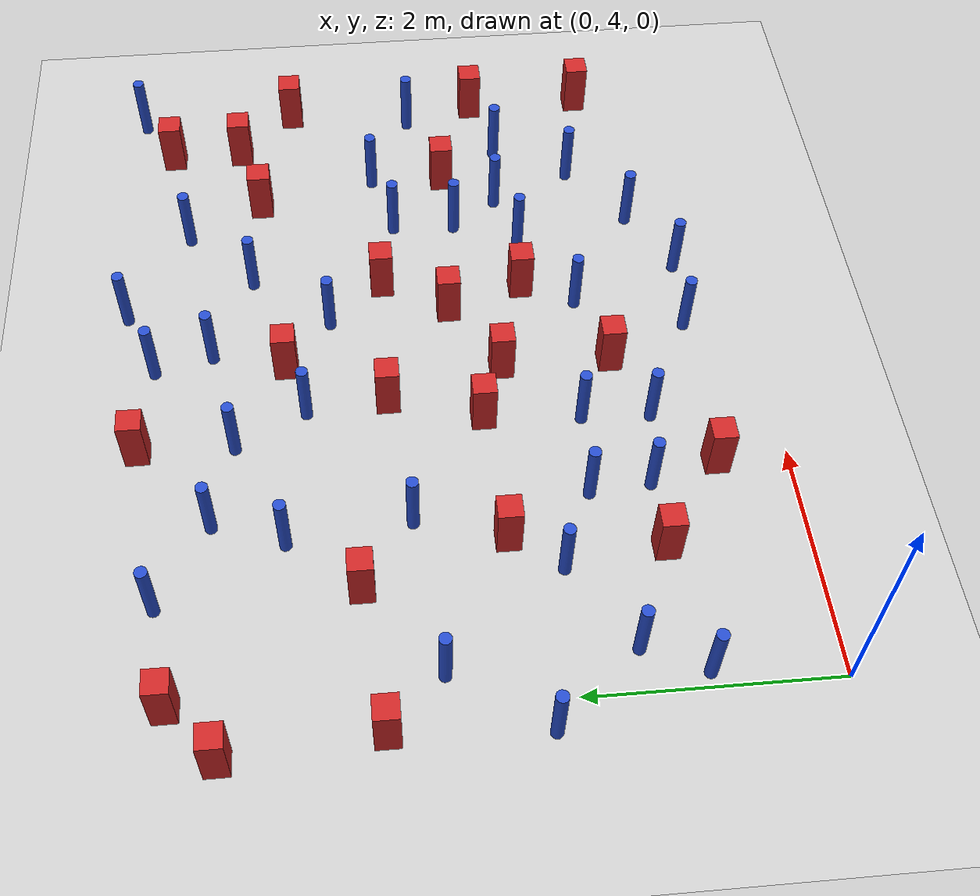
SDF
<sdf version="1.6">
 <world name="default">
  <model name="ground_plane">
   <static>1</static>
   <link name="link">
    <collision name="collision">
     <geometry><plane><normal>0 0 1</normal><size>100 100</size></plane></geometry>
     <surface><friction><ode><mu>100</mu><mu2>50</mu2></ode></friction></surface>
    </collision>
    <visual name="visual">
     <cast_shadows>0</cast_shadows>
     <geometry><plane><normal>0 0 1</normal><size>100 100</size></plane></geometry>
     <material>
      <ambient>1.0 1.0 1.0 1.0</ambient>
      <diffuse>0.8 0.8 0.8 1.0</diffuse>
      <specular>0.01 0.01 0.01 1.000000</specular>
     </material>
    </visual>
   </link>
  </model>
  <model name="pole_obstacle1">
   <static>true</static>
   <pose>4.73851063794 6.49647820725 7.38925637345e-09 -8.47170692796e-08 1.24976764786e-08 -1.74513093032e-07</pose>
   <link name="link">
    <pose>0 0 0.3 0 -0 0</pose>
    <inertial>
     <mass>1</mass>
     <inertia><ixx>0.145833</ixx><ixy>0</ixy><ixz>0</ixz><iyy>0.145833</iyy><iyz>0</iyz><izz>0.125</izz></inertia>
    </inertial>
    <collision name="collision">
     <geometry><cylinder><radius>0.05</radius><length>.6</length></cylinder></geometry>
    </collision>
    <visual name="visual">
     <geometry><cylinder><radius>0.05</radius><length>.6</length></cylinder></geometry>
     <material>
      <script><name>Gazebo/Blue</name><uri>file://media/materials/scripts/gazebo.material</uri></script>
     </material>
    </visual>
   </link>
  </model>
  <model name="pole_obstacle7">
   <static>true</static>
   <pose>2.70297682005 7.90768251212 7.38925637345e-09 -8.47170692798e-08 1.24976765033e-08 -1.74513093019e-07</pose>
   <link name="link">
    <pose>0 0 0.3 0 -0 0</pose>
    <inertial>
     <mass>1</mass>
     <inertia><ixx>0.145833</ixx><ixy>0</ixy><ixz>0</ixz><iyy>0.145833</iyy><iyz>0</iyz><izz>0.125</izz></inertia>
    </inertial>
    <collision name="collision">
     <geometry><cylinder><radius>0.05</radius><length>.6</length></cylinder></geometry>
    </collision>
    <visual name="visual">
     <geometry><cylinder><radius>0.05</radius><length>.6</length></cylinder></geometry>
     <material>
      <script><name>Gazebo/Blue</name><uri>file://media/materials/scripts/gazebo.material</uri></script>
     </material>
    </visual>
   </link>
  </model>
  <model name="square_post_obstacle19">
   <static>true</static>
   <pose>5.851577557 8.4508290675 1.91545236811e-07 -7.35059704564e-06 1.12565212e-07 2.39332434364e-05</pose>
   <link name="link">
    <pose>0 0 0.25 0 -0 0</pose>
    <inertial>
     <mass>100</mass>
     <inertia>
      <ixx>0.166667</ixx>
      <ixy>0</ixy>
      <ixz>0</ixz>
      <iyy>0.166667</iyy>
      <iyz>0</iyz>
      <izz>0.166667</izz>
     </inertia>
    </inertial>
    <collision name="collision"><geometry><box><size>.2 .2 .5</size></box></geometry></collision>
    <visual name="visual">
     <geometry><box><size>.2 .2 .5</size></box></geometry>
     <material>
      <script><name>Gazebo/Red</name><uri>file://media/materials/scripts/gazebo.material</uri></script>
     </material>
    </visual>
   </link>
  </model>
  <model name="pole_obstacle21">
   <static>true</static>
   <pose>4.77213547349 8.9189755317 7.38925637345e-09 -8.471706928e-08 1.24976765081e-08 -1.74513093015e-07</pose>
   <link name="link">
    <pose>0 0 0.3 0 -0 0</pose>
    <inertial>
     <mass>1</mass>
     <inertia><ixx>0.145833</ixx><ixy>0</ixy><ixz>0</ixz><iyy>0.145833</iyy><iyz>0</iyz><izz>0.125</izz></inertia>
    </inertial>
    <collision name="collision">
     <geometry><cylinder><radius>0.05</radius><length>.6</length></cylinder></geometry>
    </collision>
    <visual name="visual">
     <geometry><cylinder><radius>0.05</radius><length>.6</length></cylinder></geometry>
     <material>
      <script><name>Gazebo/Blue</name><uri>file://media/materials/scripts/gazebo.material</uri></script>
     </material>
    </visual>
   </link>
  </model>
  <model name="pole_obstacle28">
   <static>true</static>
   <pose>5.34138181329 5.36523538126 7.38925637345e-09 -8.47170692796e-08 1.24976764786e-08 -1.74513093032e-07</pose>
   <link name="link">
    <pose>0 0 0.3 0 -0 0</pose>
    <inertial>
     <mass>1</mass>
     <inertia><ixx>0.145833</ixx><ixy>0</ixy><ixz>0</ixz><iyy>0.145833</iyy><iyz>0</iyz><izz>0.125</izz></inertia>
    </inertial>
    <collision name="collision">
     <geometry><cylinder><radius>0.05</radius><length>.6</length></cylinder></geometry>
    </collision>
    <visual name="visual">
     <geometry><cylinder><radius>0.05</radius><length>.6</length></cylinder></geometry>
     <material>
      <script><name>Gazebo/Blue</name><uri>file://media/materials/scripts/gazebo.material</uri></script>
     </material>
    </visual>
   </link>
  </model>
  <model name="square_post_obstacle36">
   <static>true</static>
   <pose>0.99745503329 7.52708948309 1.91545236811e-07 -7.35059704564e-06 1.12565212e-07 2.39332434364e-05</pose>
   <link name="link">
    <pose>0 0 0.25 0 -0 0</pose>
    <inertial>
     <mass>100</mass>
     <inertia>
      <ixx>0.166667</ixx>
      <ixy>0</ixy>
      <ixz>0</ixz>
      <iyy>0.166667</iyy>
      <iyz>0</iyz>
      <izz>0.166667</izz>
     </inertia>
    </inertial>
    <collision name="collision"><geometry><box><size>.2 .2 .5</size></box></geometry></collision>
    <visual name="visual">
     <geometry><box><size>.2 .2 .5</size></box></geometry>
     <material>
      <script><name>Gazebo/Red</name><uri>file://media/materials/scripts/gazebo.material</uri></script>
     </material>
    </visual>
   </link>
  </model>
  <model name="square_post_obstacle37">
   <static>true</static>
   <pose>-0.175916497783 7.40323019967 1.91545236811e-07 -7.35059704564e-06 1.12565212e-07 2.39332434364e-05</pose>
   <link name="link">
    <pose>0 0 0.25 0 -0 0</pose>
    <inertial>
     <mass>100</mass>
     <inertia>
      <ixx>0.166667</ixx>
      <ixy>0</ixy>
      <ixz>0</ixz>
      <iyy>0.166667</iyy>
      <iyz>0</iyz>
      <izz>0.166667</izz>
     </inertia>
    </inertial>
    <collision name="collision"><geometry><box><size>.2 .2 .5</size></box></geometry></collision>
    <visual name="visual">
     <geometry><box><size>.2 .2 .5</size></box></geometry>
     <material>
      <script><name>Gazebo/Red</name><uri>file://media/materials/scripts/gazebo.material</uri></script>
     </material>
    </visual>
   </link>
  </model>
  <model name="pole_obstacle39">
   <static>true</static>
   <pose>2.46873665788 5.62912600046 7.38925637345e-09 -8.47170692798e-08 1.24976765033e-08 -1.74513093019e-07</pose>
   <link name="link">
    <pose>0 0 0.3 0 -0 0</pose>
    <inertial>
     <mass>1</mass>
     <inertia><ixx>0.145833</ixx><ixy>0</ixy><ixz>0</ixz><iyy>0.145833</iyy><iyz>0</iyz><izz>0.125</izz></inertia>
    </inertial>
    <collision name="collision">
     <geometry><cylinder><radius>0.05</radius><length>.6</length></cylinder></geometry>
    </collision>
    <visual name="visual">
     <geometry><cylinder><radius>0.05</radius><length>.6</length></cylinder></geometry>
     <material>
      <script><name>Gazebo/Blue</name><uri>file://media/materials/scripts/gazebo.material</uri></script>
     </material>
    </visual>
   </link>
  </model>
  <model name="pole_obstacle41">
   <static>true</static>
   <pose>3.36309769268 8.69456530944 7.38925637345e-09 -8.47170692793e-08 1.24976764408e-08 -1.74513093041e-07</pose>
   <link name="link">
    <pose>0 0 0.3 0 -0 0</pose>
    <inertial>
     <mass>1</mass>
     <inertia><ixx>0.145833</ixx><ixy>0</ixy><ixz>0</ixz><iyy>0.145833</iyy><iyz>0</iyz><izz>0.125</izz></inertia>
    </inertial>
    <collision name="collision">
     <geometry><cylinder><radius>0.05</radius><length>.6</length></cylinder></geometry>
    </collision>
    <visual name="visual">
     <geometry><cylinder><radius>0.05</radius><length>.6</length></cylinder></geometry>
     <material>
      <script><name>Gazebo/Blue</name><uri>file://media/materials/scripts/gazebo.material</uri></script>
     </material>
    </visual>
   </link>
  </model>
  <model name="pole_obstacle44">
   <static>true</static>
   <pose>3.73170947333 5.5100134365 7.38925637345e-09 -8.47170692798e-08 1.24976765033e-08 -1.74513093019e-07</pose>
   <link name="link">
    <pose>0 0 0.3 0 -0 0</pose>
    <inertial>
     <mass>1</mass>
     <inertia><ixx>0.145833</ixx><ixy>0</ixy><ixz>0</ixz><iyy>0.145833</iyy><iyz>0</iyz><izz>0.125</izz></inertia>
    </inertial>
    <collision name="collision">
     <geometry><cylinder><radius>0.05</radius><length>.6</length></cylinder></geometry>
    </collision>
    <visual name="visual">
     <geometry><cylinder><radius>0.05</radius><length>.6</length></cylinder></geometry>
     <material>
      <script><name>Gazebo/Blue</name><uri>file://media/materials/scripts/gazebo.material</uri></script>
     </material>
    </visual>
   </link>
  </model>
  <model name="square_post_obstacle61">
   <static>true</static>
   <pose>-0.283159955035 8.6093693783 1.91545236811e-07 -7.35059704564e-06 1.12565212e-07 2.39332434364e-05</pose>
   <link name="link">
    <pose>0 0 0.25 0 -0 0</pose>
    <inertial>
     <mass>100</mass>
     <inertia>
      <ixx>0.166667</ixx>
      <ixy>0</ixy>
      <ixz>0</ixz>
      <iyy>0.166667</iyy>
      <iyz>0</iyz>
      <izz>0.166667</izz>
     </inertia>
    </inertial>
    <collision name="collision"><geometry><box><size>.2 .2 .5</size></box></geometry></collision>
    <visual name="visual">
     <geometry><box><size>.2 .2 .5</size></box></geometry>
     <material>
      <script><name>Gazebo/Red</name><uri>file://media/materials/scripts/gazebo.material</uri></script>
     </material>
    </visual>
   </link>
  </model>
  <model name="pole_obstacle58">
   <static>true</static>
   <pose>3.66218898532 7.67626708009 7.38925637345e-09 -8.47170692798e-08 1.24976765033e-08 -1.74513093019e-07</pose>
   <link name="link">
    <pose>0 0 0.3 0 -0 0</pose>
    <inertial>
     <mass>1</mass>
     <inertia><ixx>0.145833</ixx><ixy>0</ixy><ixz>0</ixz><iyy>0.145833</iyy><iyz>0</iyz><izz>0.125</izz></inertia>
    </inertial>
    <collision name="collision">
     <geometry><cylinder><radius>0.05</radius><length>.6</length></cylinder></geometry>
    </collision>
    <visual name="visual">
     <geometry><cylinder><radius>0.05</radius><length>.6</length></cylinder></geometry>
     <material>
      <script><name>Gazebo/Blue</name><uri>file://media/materials/scripts/gazebo.material</uri></script>
     </material>
    </visual>
   </link>
  </model>
  <model name="pole_obstacle62">
   <static>true</static>
   <pose>4.76784411954 7.05149053623 7.38925637345e-09 -8.47170692796e-08 1.24976764786e-08 -1.74513093032e-07</pose>
   <link name="link">
    <pose>0 0 0.3 0 -0 0</pose>
    <inertial>
     <mass>1</mass>
     <inertia><ixx>0.145833</ixx><ixy>0</ixy><ixz>0</ixz><iyy>0.145833</iyy><iyz>0</iyz><izz>0.125</izz></inertia>
    </inertial>
    <collision name="collision">
     <geometry><cylinder><radius>0.05</radius><length>.6</length></cylinder></geometry>
    </collision>
    <visual name="visual">
     <geometry><cylinder><radius>0.05</radius><length>.6</length></cylinder></geometry>
     <material>
      <script><name>Gazebo/Blue</name><uri>file://media/materials/scripts/gazebo.material</uri></script>
     </material>
    </visual>
   </link>
  </model>
  <model name="square_post_obstacle66">
   <static>true</static>
   <pose>0.145859889346 8.98830412797 1.91545236811e-07 -7.35059704564e-06 1.12565212e-07 2.39332434364e-05</pose>
   <link name="link">
    <pose>0 0 0.25 0 -0 0</pose>
    <inertial>
     <mass>100</mass>
     <inertia>
      <ixx>0.166667</ixx>
      <ixy>0</ixy>
      <ixz>0</ixz>
      <iyy>0.166667</iyy>
      <iyz>0</iyz>
      <izz>0.166667</izz>
     </inertia>
    </inertial>
    <collision name="collision"><geometry><box><size>.2 .2 .5</size></box></geometry></collision>
    <visual name="visual">
     <geometry><box><size>.2 .2 .5</size></box></geometry>
     <material>
      <script><name>Gazebo/Red</name><uri>file://media/materials/scripts/gazebo.material</uri></script>
     </material>
    </visual>
   </link>
  </model>
  <model name="pole_obstacle64">
   <static>true</static>
   <pose>5.03148485791 6.08996904769 7.38925637345e-09 -8.47170692796e-08 1.24976764786e-08 -1.74513093032e-07</pose>
   <link name="link">
    <pose>0 0 0.3 0 -0 0</pose>
    <inertial>
     <mass>1</mass>
     <inertia><ixx>0.145833</ixx><ixy>0</ixy><ixz>0</ixz><iyy>0.145833</iyy><iyz>0</iyz><izz>0.125</izz></inertia>
    </inertial>
    <collision name="collision">
     <geometry><cylinder><radius>0.05</radius><length>.6</length></cylinder></geometry>
    </collision>
    <visual name="visual">
     <geometry><cylinder><radius>0.05</radius><length>.6</length></cylinder></geometry>
     <material>
      <script><name>Gazebo/Blue</name><uri>file://media/materials/scripts/gazebo.material</uri></script>
     </material>
    </visual>
   </link>
  </model>
  <model name="pole_obstacle66">
   <static>true</static>
   <pose>0.342882053582 5.50436187087 7.38925637345e-09 -8.471706928e-08 1.24976765079e-08 -1.74513093015e-07</pose>
   <link name="link">
    <pose>0 0 0.3 0 -0 0</pose>
    <inertial>
     <mass>1</mass>
     <inertia><ixx>0.145833</ixx><ixy>0</ixy><ixz>0</ixz><iyy>0.145833</iyy><iyz>0</iyz><izz>0.125</izz></inertia>
    </inertial>
    <collision name="collision">
     <geometry><cylinder><radius>0.05</radius><length>.6</length></cylinder></geometry>
    </collision>
    <visual name="visual">
     <geometry><cylinder><radius>0.05</radius><length>.6</length></cylinder></geometry>
     <material>
      <script><name>Gazebo/Blue</name><uri>file://media/materials/scripts/gazebo.material</uri></script>
     </material>
    </visual>
   </link>
  </model>
  <model name="pole_obstacle68">
   <static>true</static>
   <pose>3.39816816031 4.59161182173 7.38925637345e-09 -8.47170692798e-08 1.24976765033e-08 -1.74513093019e-07</pose>
   <link name="link">
    <pose>0 0 0.3 0 -0 0</pose>
    <inertial>
     <mass>1</mass>
     <inertia><ixx>0.145833</ixx><ixy>0</ixy><ixz>0</ixz><iyy>0.145833</iyy><iyz>0</iyz><izz>0.125</izz></inertia>
    </inertial>
    <collision name="collision">
     <geometry><cylinder><radius>0.05</radius><length>.6</length></cylinder></geometry>
    </collision>
    <visual name="visual">
     <geometry><cylinder><radius>0.05</radius><length>.6</length></cylinder></geometry>
     <material>
      <script><name>Gazebo/Blue</name><uri>file://media/materials/scripts/gazebo.material</uri></script>
     </material>
    </visual>
   </link>
  </model>
  <model name="square_post_obstacle75">
   <static>true</static>
   <pose>2.76381776139 7.22342882427 1.91545236811e-07 -7.35059704564e-06 1.12565212e-07 2.39332434364e-05</pose>
   <link name="link">
    <pose>0 0 0.25 0 -0 0</pose>
    <inertial>
     <mass>100</mass>
     <inertia>
      <ixx>0.166667</ixx>
      <ixy>0</ixy>
      <ixz>0</ixz>
      <iyy>0.166667</iyy>
      <iyz>0</iyz>
      <izz>0.166667</izz>
     </inertia>
    </inertial>
    <collision name="collision"><geometry><box><size>.2 .2 .5</size></box></geometry></collision>
    <visual name="visual">
     <geometry><box><size>.2 .2 .5</size></box></geometry>
     <material>
      <script><name>Gazebo/Red</name><uri>file://media/materials/scripts/gazebo.material</uri></script>
     </material>
    </visual>
   </link>
  </model>
  <model name="pole_obstacle69">
   <static>true</static>
   <pose>3.23704572217 9.18847404855 7.38925637345e-09 -8.47170692793e-08 1.24976764408e-08 -1.74513093041e-07</pose>
   <link name="link">
    <pose>0 0 0.3 0 -0 0</pose>
    <inertial>
     <mass>1</mass>
     <inertia><ixx>0.145833</ixx><ixy>0</ixy><ixz>0</ixz><iyy>0.145833</iyy><iyz>0</iyz><izz>0.125</izz></inertia>
    </inertial>
    <collision name="collision">
     <geometry><cylinder><radius>0.05</radius><length>.6</length></cylinder></geometry>
    </collision>
    <visual name="visual">
     <geometry><cylinder><radius>0.05</radius><length>.6</length></cylinder></geometry>
     <material>
      <script><name>Gazebo/Blue</name><uri>file://media/materials/scripts/gazebo.material</uri></script>
     </material>
    </visual>
   </link>
  </model>
  <model name="square_post_obstacle76">
   <static>true</static>
   <pose>5.36292982853 6.56343718696 1.91545236811e-07 -7.35059704564e-06 1.12565212e-07 2.39332434364e-05</pose>
   <link name="link">
    <pose>0 0 0.25 0 -0 0</pose>
    <inertial>
     <mass>100</mass>
     <inertia>
      <ixx>0.166667</ixx>
      <ixy>0</ixy>
      <ixz>0</ixz>
      <iyy>0.166667</iyy>
      <iyz>0</iyz>
      <izz>0.166667</izz>
     </inertia>
    </inertial>
    <collision name="collision"><geometry><box><size>.2 .2 .5</size></box></geometry></collision>
    <visual name="visual">
     <geometry><box><size>.2 .2 .5</size></box></geometry>
     <material>
      <script><name>Gazebo/Red</name><uri>file://media/materials/scripts/gazebo.material</uri></script>
     </material>
    </visual>
   </link>
  </model>
  <model name="pole_obstacle72">
   <static>true</static>
   <pose>1.57068440585 7.09657875329 7.38925637345e-09 -8.47170692799e-08 1.24976765033e-08 -1.74513093018e-07</pose>
   <link name="link">
    <pose>0 0 0.3 0 -0 0</pose>
    <inertial>
     <mass>1</mass>
     <inertia><ixx>0.145833</ixx><ixy>0</ixy><ixz>0</ixz><iyy>0.145833</iyy><iyz>0</iyz><izz>0.125</izz></inertia>
    </inertial>
    <collision name="collision">
     <geometry><cylinder><radius>0.05</radius><length>.6</length></cylinder></geometry>
    </collision>
    <visual name="visual">
     <geometry><cylinder><radius>0.05</radius><length>.6</length></cylinder></geometry>
     <material>
      <script><name>Gazebo/Blue</name><uri>file://media/materials/scripts/gazebo.material</uri></script>
     </material>
    </visual>
   </link>
  </model>
  <model name="pole_obstacle73">
   <static>true</static>
   <pose>0.962466290451 9.10773886333 7.38925637345e-09 -8.47170692796e-08 1.24976764734e-08 -1.74513093035e-07</pose>
   <link name="link">
    <pose>0 0 0.3 0 -0 0</pose>
    <inertial>
     <mass>1</mass>
     <inertia><ixx>0.145833</ixx><ixy>0</ixy><ixz>0</ixz><iyy>0.145833</iyy><iyz>0</iyz><izz>0.125</izz></inertia>
    </inertial>
    <collision name="collision">
     <geometry><cylinder><radius>0.05</radius><length>.6</length></cylinder></geometry>
    </collision>
    <visual name="visual">
     <geometry><cylinder><radius>0.05</radius><length>.6</length></cylinder></geometry>
     <material>
      <script><name>Gazebo/Blue</name><uri>file://media/materials/scripts/gazebo.material</uri></script>
     </material>
    </visual>
   </link>
  </model>
  <model name="pole_obstacle78">
   <static>true</static>
   <pose>6.33162849417 9.38808715982 7.38925637345e-09 -8.471706928e-08 1.24976765081e-08 -1.74513093015e-07</pose>
   <link name="link">
    <pose>0 0 0.3 0 -0 0</pose>
    <inertial>
     <mass>1</mass>
     <inertia><ixx>0.145833</ixx><ixy>0</ixy><ixz>0</ixz><iyy>0.145833</iyy><iyz>0</iyz><izz>0.125</izz></inertia>
    </inertial>
    <collision name="collision">
     <geometry><cylinder><radius>0.05</radius><length>.6</length></cylinder></geometry>
    </collision>
    <visual name="visual">
     <geometry><cylinder><radius>0.05</radius><length>.6</length></cylinder></geometry>
     <material>
      <script><name>Gazebo/Blue</name><uri>file://media/materials/scripts/gazebo.material</uri></script>
     </material>
    </visual>
   </link>
  </model>
  <model name="pole_obstacle86">
   <static>true</static>
   <pose>4.18841774367 8.34520979916 7.38925637345e-09 -8.471706928e-08 1.24976765081e-08 -1.74513093015e-07</pose>
   <link name="link">
    <pose>0 0 0.3 0 -0 0</pose>
    <inertial>
     <mass>1</mass>
     <inertia><ixx>0.145833</ixx><ixy>0</ixy><ixz>0</ixz><iyy>0.145833</iyy><iyz>0</iyz><izz>0.125</izz></inertia>
    </inertial>
    <collision name="collision">
     <geometry><cylinder><radius>0.05</radius><length>.6</length></cylinder></geometry>
    </collision>
    <visual name="visual">
     <geometry><cylinder><radius>0.05</radius><length>.6</length></cylinder></geometry>
     <material>
      <script><name>Gazebo/Blue</name><uri>file://media/materials/scripts/gazebo.material</uri></script>
     </material>
    </visual>
   </link>
  </model>
  <model name="square_post_obstacle81">
   <static>true</static>
   <pose>4.0607975957 7.19972878992 1.91545236811e-07 -7.35059704564e-06 1.12565212e-07 2.39332434364e-05</pose>
   <link name="link">
    <pose>0 0 0.25 0 -0 0</pose>
    <inertial>
     <mass>100</mass>
     <inertia>
      <ixx>0.166667</ixx>
      <ixy>0</ixy>
      <ixz>0</ixz>
      <iyy>0.166667</iyy>
      <iyz>0</iyz>
      <izz>0.166667</izz>
     </inertia>
    </inertial>
    <collision name="collision"><geometry><box><size>.2 .2 .5</size></box></geometry></collision>
    <visual name="visual">
     <geometry><box><size>.2 .2 .5</size></box></geometry>
     <material>
      <script><name>Gazebo/Red</name><uri>file://media/materials/scripts/gazebo.material</uri></script>
     </material>
    </visual>
   </link>
  </model>
  <model name="pole_obstacle99">
   <static>true</static>
   <pose>4.70937086408 4.89312772793 7.38925637345e-09 -8.47170692796e-08 1.24976764786e-08 -1.74513093032e-07</pose>
   <link name="link">
    <pose>0 0 0.3 0 -0 0</pose>
    <inertial>
     <mass>1</mass>
     <inertia><ixx>0.145833</ixx><ixy>0</ixy><ixz>0</ixz><iyy>0.145833</iyy><iyz>0</iyz><izz>0.125</izz></inertia>
    </inertial>
    <collision name="collision">
     <geometry><cylinder><radius>0.05</radius><length>.6</length></cylinder></geometry>
    </collision>
    <visual name="visual">
     <geometry><cylinder><radius>0.05</radius><length>.6</length></cylinder></geometry>
     <material>
      <script><name>Gazebo/Blue</name><uri>file://media/materials/scripts/gazebo.material</uri></script>
     </material>
    </visual>
   </link>
  </model>
  <model name="pole_obstacle105">
   <static>true</static>
   <pose>1.05998482462 5.96294602468 7.38925637345e-09 -8.47170692799e-08 1.24976765033e-08 -1.74513093018e-07</pose>
   <link name="link">
    <pose>0 0 0.3 0 -0 0</pose>
    <inertial>
     <mass>1</mass>
     <inertia><ixx>0.145833</ixx><ixy>0</ixy><ixz>0</ixz><iyy>0.145833</iyy><iyz>0</iyz><izz>0.125</izz></inertia>
    </inertial>
    <collision name="collision">
     <geometry><cylinder><radius>0.05</radius><length>.6</length></cylinder></geometry>
    </collision>
    <visual name="visual">
     <geometry><cylinder><radius>0.05</radius><length>.6</length></cylinder></geometry>
     <material>
      <script><name>Gazebo/Blue</name><uri>file://media/materials/scripts/gazebo.material</uri></script>
     </material>
    </visual>
   </link>
  </model>
  <model name="pole_obstacle109">
   <static>true</static>
   <pose>3.85930907778 9.44563204068 7.38925637345e-09 -8.47170692793e-08 1.24976764408e-08 -1.74513093041e-07</pose>
   <link name="link">
    <pose>0 0 0.3 0 -0 0</pose>
    <inertial>
     <mass>1</mass>
     <inertia><ixx>0.145833</ixx><ixy>0</ixy><ixz>0</ixz><iyy>0.145833</iyy><iyz>0</iyz><izz>0.125</izz></inertia>
    </inertial>
    <collision name="collision">
     <geometry><cylinder><radius>0.05</radius><length>.6</length></cylinder></geometry>
    </collision>
    <visual name="visual">
     <geometry><cylinder><radius>0.05</radius><length>.6</length></cylinder></geometry>
     <material>
      <script><name>Gazebo/Blue</name><uri>file://media/materials/scripts/gazebo.material</uri></script>
     </material>
    </visual>
   </link>
  </model>
  <model name="square_post_obstacle97">
   <static>true</static>
   <pose>2.53398918597 6.4442494845 1.91545236811e-07 -7.35059704564e-06 1.12565212e-07 2.39332434364e-05</pose>
   <link name="link">
    <pose>0 0 0.25 0 -0 0</pose>
    <inertial>
     <mass>100</mass>
     <inertia>
      <ixx>0.166667</ixx>
      <ixy>0</ixy>
      <ixz>0</ixz>
      <iyy>0.166667</iyy>
      <iyz>0</iyz>
      <izz>0.166667</izz>
     </inertia>
    </inertial>
    <collision name="collision"><geometry><box><size>.2 .2 .5</size></box></geometry></collision>
    <visual name="visual">
     <geometry><box><size>.2 .2 .5</size></box></geometry>
     <material>
      <script><name>Gazebo/Red</name><uri>file://media/materials/scripts/gazebo.material</uri></script>
     </material>
    </visual>
   </link>
  </model>
  <model name="pole_obstacle117">
   <static>true</static>
   <pose>5.70467759612 6.02529274957 7.38925637345e-09 -8.47170692796e-08 1.24976764786e-08 -1.74513093032e-07</pose>
   <link name="link">
    <pose>0 0 0.3 0 -0 0</pose>
    <inertial>
     <mass>1</mass>
     <inertia><ixx>0.145833</ixx><ixy>0</ixy><ixz>0</ixz><iyy>0.145833</iyy><iyz>0</iyz><izz>0.125</izz></inertia>
    </inertial>
    <collision name="collision">
     <geometry><cylinder><radius>0.05</radius><length>.6</length></cylinder></geometry>
    </collision>
    <visual name="visual">
     <geometry><cylinder><radius>0.05</radius><length>.6</length></cylinder></geometry>
     <material>
      <script><name>Gazebo/Blue</name><uri>file://media/materials/scripts/gazebo.material</uri></script>
     </material>
    </visual>
   </link>
  </model>
  <model name="square_post_obstacle105">
   <static>true</static>
   <pose>6.36695720167 5.15044858903 1.91545236811e-07 -7.35059704564e-06 1.12565212e-07 2.39332434364e-05</pose>
   <link name="link">
    <pose>0 0 0.25 0 -0 0</pose>
    <inertial>
     <mass>100</mass>
     <inertia>
      <ixx>0.166667</ixx>
      <ixy>0</ixy>
      <ixz>0</ixz>
      <iyy>0.166667</iyy>
      <iyz>0</iyz>
      <izz>0.166667</izz>
     </inertia>
    </inertial>
    <collision name="collision"><geometry><box><size>.2 .2 .5</size></box></geometry></collision>
    <visual name="visual">
     <geometry><box><size>.2 .2 .5</size></box></geometry>
     <material>
      <script><name>Gazebo/Red</name><uri>file://media/materials/scripts/gazebo.material</uri></script>
     </material>
    </visual>
   </link>
  </model>
  <model name="pole_obstacle119">
   <static>true</static>
   <pose>5.39058000218 7.21884123294 7.38925637345e-09 -8.47170692796e-08 1.24976764786e-08 -1.74513093032e-07</pose>
   <link name="link">
    <pose>0 0 0.3 0 -0 0</pose>
    <inertial>
     <mass>1</mass>
     <inertia><ixx>0.145833</ixx><ixy>0</ixy><ixz>0</ixz><iyy>0.145833</iyy><iyz>0</iyz><izz>0.125</izz></inertia>
    </inertial>
    <collision name="collision">
     <geometry><cylinder><radius>0.05</radius><length>.6</length></cylinder></geometry>
    </collision>
    <visual name="visual">
     <geometry><cylinder><radius>0.05</radius><length>.6</length></cylinder></geometry>
     <material>
      <script><name>Gazebo/Blue</name><uri>file://media/materials/scripts/gazebo.material</uri></script>
     </material>
    </visual>
   </link>
  </model>
  <model name="pole_obstacle120">
   <static>true</static>
   <pose>1.65739493847 8.68549212809 7.38925637345e-09 -8.47170692798e-08 1.24976764881e-08 -1.74513093027e-07</pose>
   <link name="link">
    <pose>0 0 0.3 0 -0 0</pose>
    <inertial>
     <mass>1</mass>
     <inertia><ixx>0.145833</ixx><ixy>0</ixy><ixz>0</ixz><iyy>0.145833</iyy><iyz>0</iyz><izz>0.125</izz></inertia>
    </inertial>
    <collision name="collision">
     <geometry><cylinder><radius>0.05</radius><length>.6</length></cylinder></geometry>
    </collision>
    <visual name="visual">
     <geometry><cylinder><radius>0.05</radius><length>.6</length></cylinder></geometry>
     <material>
      <script><name>Gazebo/Blue</name><uri>file://media/materials/scripts/gazebo.material</uri></script>
     </material>
    </visual>
   </link>
  </model>
  <model name="pole_obstacle134">
   <static>true</static>
   <pose>2.44600133066 5.05134250954 7.38925637345e-09 -8.47170692798e-08 1.24976765033e-08 -1.74513093019e-07</pose>
   <link name="link">
    <pose>0 0 0.3 0 -0 0</pose>
    <inertial>
     <mass>1</mass>
     <inertia><ixx>0.145833</ixx><ixy>0</ixy><ixz>0</ixz><iyy>0.145833</iyy><iyz>0</iyz><izz>0.125</izz></inertia>
    </inertial>
    <collision name="collision">
     <geometry><cylinder><radius>0.05</radius><length>.6</length></cylinder></geometry>
    </collision>
    <visual name="visual">
     <geometry><cylinder><radius>0.05</radius><length>.6</length></cylinder></geometry>
     <material>
      <script><name>Gazebo/Blue</name><uri>file://media/materials/scripts/gazebo.material</uri></script>
     </material>
    </visual>
   </link>
  </model>
  <model name="pole_obstacle145">
   <static>true</static>
   <pose>1.45265563021 8.10210608472 7.38925637345e-09 -8.47170692798e-08 1.24976764881e-08 -1.74513093027e-07</pose>
   <link name="link">
    <pose>0 0 0.3 0 -0 0</pose>
    <inertial>
     <mass>1</mass>
     <inertia><ixx>0.145833</ixx><ixy>0</ixy><ixz>0</ixz><iyy>0.145833</iyy><iyz>0</iyz><izz>0.125</izz></inertia>
    </inertial>
    <collision name="collision">
     <geometry><cylinder><radius>0.05</radius><length>.6</length></cylinder></geometry>
    </collision>
    <visual name="visual">
     <geometry><cylinder><radius>0.05</radius><length>.6</length></cylinder></geometry>
     <material>
      <script><name>Gazebo/Blue</name><uri>file://media/materials/scripts/gazebo.material</uri></script>
     </material>
    </visual>
   </link>
  </model>
  <model name="pole_obstacle147">
   <static>true</static>
   <pose>0.113833105558 5.01429860752 7.38925637345e-09 -8.47170692799e-08 1.2497676504e-08 -1.74513093019e-07</pose>
   <link name="link">
    <pose>0 0 0.3 0 -0 0</pose>
    <inertial>
     <mass>1</mass>
     <inertia><ixx>0.145833</ixx><ixy>0</ixy><ixz>0</ixz><iyy>0.145833</iyy><iyz>0</iyz><izz>0.125</izz></inertia>
    </inertial>
    <collision name="collision">
     <geometry><cylinder><radius>0.05</radius><length>.6</length></cylinder></geometry>
    </collision>
    <visual name="visual">
     <geometry><cylinder><radius>0.05</radius><length>.6</length></cylinder></geometry>
     <material>
      <script><name>Gazebo/Blue</name><uri>file://media/materials/scripts/gazebo.material</uri></script>
     </material>
    </visual>
   </link>
  </model>
  <model name="square_post_obstacle138">
   <static>true</static>
   <pose>1.93578529821 4.60521904289 1.91545236811e-07 -7.35059704564e-06 1.12565212e-07 2.39332434364e-05</pose>
   <link name="link">
    <pose>0 0 0.25 0 -0 0</pose>
    <inertial>
     <mass>100</mass>
     <inertia>
      <ixx>0.166667</ixx>
      <ixy>0</ixy>
      <ixz>0</ixz>
      <iyy>0.166667</iyy>
      <iyz>0</iyz>
      <izz>0.166667</izz>
     </inertia>
    </inertial>
    <collision name="collision"><geometry><box><size>.2 .2 .5</size></box></geometry></collision>
    <visual name="visual">
     <geometry><box><size>.2 .2 .5</size></box></geometry>
     <material>
      <script><name>Gazebo/Red</name><uri>file://media/materials/scripts/gazebo.material</uri></script>
     </material>
    </visual>
   </link>
  </model>
  <model name="square_post_obstacle152">
   <static>true</static>
   <pose>6.34530614926 7.95795415552 1.91545236811e-07 -7.35059704564e-06 1.12565212e-07 2.39332434364e-05</pose>
   <link name="link">
    <pose>0 0 0.25 0 -0 0</pose>
    <inertial>
     <mass>100</mass>
     <inertia>
      <ixx>0.166667</ixx>
      <ixy>0</ixy>
      <ixz>0</ixz>
      <iyy>0.166667</iyy>
      <iyz>0</iyz>
      <izz>0.166667</izz>
     </inertia>
    </inertial>
    <collision name="collision"><geometry><box><size>.2 .2 .5</size></box></geometry></collision>
    <visual name="visual">
     <geometry><box><size>.2 .2 .5</size></box></geometry>
     <material>
      <script><name>Gazebo/Red</name><uri>file://media/materials/scripts/gazebo.material</uri></script>
     </material>
    </visual>
   </link>
  </model>
  <model name="pole_obstacle160">
   <static>true</static>
   <pose>2.39498688018 8.50074505772 7.38925637345e-09 -8.47170692793e-08 1.24976764408e-08 -1.74513093041e-07</pose>
   <link name="link">
    <pose>0 0 0.3 0 -0 0</pose>
    <inertial>
     <mass>1</mass>
     <inertia><ixx>0.145833</ixx><ixy>0</ixy><ixz>0</ixz><iyy>0.145833</iyy><iyz>0</iyz><izz>0.125</izz></inertia>
    </inertial>
    <collision name="collision">
     <geometry><cylinder><radius>0.05</radius><length>.6</length></cylinder></geometry>
    </collision>
    <visual name="visual">
     <geometry><cylinder><radius>0.05</radius><length>.6</length></cylinder></geometry>
     <material>
      <script><name>Gazebo/Blue</name><uri>file://media/materials/scripts/gazebo.material</uri></script>
     </material>
    </visual>
   </link>
  </model>
  <model name="pole_obstacle171">
   <static>true</static>
   <pose>1.77308325886 5.16357823981 7.38925637345e-09 -8.47170692799e-08 1.24976765033e-08 -1.74513093018e-07</pose>
   <link name="link">
    <pose>0 0 0.3 0 -0 0</pose>
    <inertial>
     <mass>1</mass>
     <inertia><ixx>0.145833</ixx><ixy>0</ixy><ixz>0</ixz><iyy>0.145833</iyy><iyz>0</iyz><izz>0.125</izz></inertia>
    </inertial>
    <collision name="collision">
     <geometry><cylinder><radius>0.05</radius><length>.6</length></cylinder></geometry>
    </collision>
    <visual name="visual">
     <geometry><cylinder><radius>0.05</radius><length>.6</length></cylinder></geometry>
     <material>
      <script><name>Gazebo/Blue</name><uri>file://media/materials/scripts/gazebo.material</uri></script>
     </material>
    </visual>
   </link>
  </model>
  <model name="pole_obstacle174">
   <static>true</static>
   <pose>0.249535903185 6.95630511431 7.38925637345e-09 -8.471706928e-08 1.24976765124e-08 -1.74513093014e-07</pose>
   <link name="link">
    <pose>0 0 0.3 0 -0 0</pose>
    <inertial>
     <mass>1</mass>
     <inertia><ixx>0.145833</ixx><ixy>0</ixy><ixz>0</ixz><iyy>0.145833</iyy><iyz>0</iyz><izz>0.125</izz></inertia>
    </inertial>
    <collision name="collision">
     <geometry><cylinder><radius>0.05</radius><length>.6</length></cylinder></geometry>
    </collision>
    <visual name="visual">
     <geometry><cylinder><radius>0.05</radius><length>.6</length></cylinder></geometry>
     <material>
      <script><name>Gazebo/Blue</name><uri>file://media/materials/scripts/gazebo.material</uri></script>
     </material>
    </visual>
   </link>
  </model>
  <model name="pole_obstacle179">
   <static>true</static>
   <pose>6.18075201557 6.8324407885 7.38925637345e-09 -8.47170692796e-08 1.24976764786e-08 -1.74513093032e-07</pose>
   <link name="link">
    <pose>0 0 0.3 0 -0 0</pose>
    <inertial>
     <mass>1</mass>
     <inertia><ixx>0.145833</ixx><ixy>0</ixy><ixz>0</ixz><iyy>0.145833</iyy><iyz>0</iyz><izz>0.125</izz></inertia>
    </inertial>
    <collision name="collision">
     <geometry><cylinder><radius>0.05</radius><length>.6</length></cylinder></geometry>
    </collision>
    <visual name="visual">
     <geometry><cylinder><radius>0.05</radius><length>.6</length></cylinder></geometry>
     <material>
      <script><name>Gazebo/Blue</name><uri>file://media/materials/scripts/gazebo.material</uri></script>
     </material>
    </visual>
   </link>
  </model>
  <model name="square_post_obstacle171">
   <static>true</static>
   <pose>1.17675517936 5.15094009659 1.91545236811e-07 -7.35059704564e-06 1.12565212e-07 2.39332434364e-05</pose>
   <link name="link">
    <pose>0 0 0.25 0 -0 0</pose>
    <inertial>
     <mass>100</mass>
     <inertia>
      <ixx>0.166667</ixx>
      <ixy>0</ixy>
      <ixz>0</ixz>
      <iyy>0.166667</iyy>
      <iyz>0</iyz>
      <izz>0.166667</izz>
     </inertia>
    </inertial>
    <collision name="collision"><geometry><box><size>.2 .2 .5</size></box></geometry></collision>
    <visual name="visual">
     <geometry><box><size>.2 .2 .5</size></box></geometry>
     <material>
      <script><name>Gazebo/Red</name><uri>file://media/materials/scripts/gazebo.material</uri></script>
     </material>
    </visual>
   </link>
  </model>
  <model name="pole_obstacle186">
   <static>true</static>
   <pose>4.07852052353 4.55731223871 7.38925637345e-09 -8.47170692796e-08 1.24976764786e-08 -1.74513093032e-07</pose>
   <link name="link">
    <pose>0 0 0.3 0 -0 0</pose>
    <inertial>
     <mass>1</mass>
     <inertia><ixx>0.145833</ixx><ixy>0</ixy><ixz>0</ixz><iyy>0.145833</iyy><iyz>0</iyz><izz>0.125</izz></inertia>
    </inertial>
    <collision name="collision">
     <geometry><cylinder><radius>0.05</radius><length>.6</length></cylinder></geometry>
    </collision>
    <visual name="visual">
     <geometry><cylinder><radius>0.05</radius><length>.6</length></cylinder></geometry>
     <material>
      <script><name>Gazebo/Blue</name><uri>file://media/materials/scripts/gazebo.material</uri></script>
     </material>
    </visual>
   </link>
  </model>
  <model name="square_post_obstacle180">
   <static>true</static>
   <pose>3.05482067368 5.30514050131 1.91545236811e-07 -7.35059704564e-06 1.12565212e-07 2.39332434364e-05</pose>
   <link name="link">
    <pose>0 0 0.25 0 -0 0</pose>
    <inertial>
     <mass>100</mass>
     <inertia>
      <ixx>0.166667</ixx>
      <ixy>0</ixy>
      <ixz>0</ixz>
      <iyy>0.166667</iyy>
      <iyz>0</iyz>
      <izz>0.166667</izz>
     </inertia>
    </inertial>
    <collision name="collision"><geometry><box><size>.2 .2 .5</size></box></geometry></collision>
    <visual name="visual">
     <geometry><box><size>.2 .2 .5</size></box></geometry>
     <material>
      <script><name>Gazebo/Red</name><uri>file://media/materials/scripts/gazebo.material</uri></script>
     </material>
    </visual>
   </link>
  </model>
  <model name="square_post_obstacle185">
   <static>true</static>
   <pose>3.19757737077 8.06747246791 1.91545236811e-07 -7.35059704564e-06 1.12565212e-07 2.39332434364e-05</pose>
   <link name="link">
    <pose>0 0 0.25 0 -0 0</pose>
    <inertial>
     <mass>100</mass>
     <inertia>
      <ixx>0.166667</ixx>
      <ixy>0</ixy>
      <ixz>0</ixz>
      <iyy>0.166667</iyy>
      <iyz>0</iyz>
      <izz>0.166667</izz>
     </inertia>
    </inertial>
    <collision name="collision"><geometry><box><size>.2 .2 .5</size></box></geometry></collision>
    <visual name="visual">
     <geometry><box><size>.2 .2 .5</size></box></geometry>
     <material>
      <script><name>Gazebo/Red</name><uri>file://media/materials/scripts/gazebo.material</uri></script>
     </material>
    </visual>
   </link>
  </model>
  <model name="square_post_obstacle199">
   <static>true</static>
   <pose>1.35655716432 6.37078682594 1.91545236811e-07 -7.35059704564e-06 1.12565212e-07 2.39332434364e-05</pose>
   <link name="link">
    <pose>0 0 0.25 0 -0 0</pose>
    <inertial>
     <mass>100</mass>
     <inertia>
      <ixx>0.166667</ixx>
      <ixy>0</ixy>
      <ixz>0</ixz>
      <iyy>0.166667</iyy>
      <iyz>0</iyz>
      <izz>0.166667</izz>
     </inertia>
    </inertial>
    <collision name="collision"><geometry><box><size>.2 .2 .5</size></box></geometry></collision>
    <visual name="visual">
     <geometry><box><size>.2 .2 .5</size></box></geometry>
     <material>
      <script><name>Gazebo/Red</name><uri>file://media/materials/scripts/gazebo.material</uri></script>
     </material>
    </visual>
   </link>
  </model>
  <model name="square_post_obstacle208">
   <static>true</static>
   <pose>5.1300734503 8.26036855822 1.91545236811e-07 -7.35059704564e-06 1.12565212e-07 2.39332434364e-05</pose>
   <link name="link">
    <pose>0 0 0.25 0 -0 0</pose>
    <inertial>
     <mass>100</mass>
     <inertia>
      <ixx>0.166667</ixx>
      <ixy>0</ixy>
      <ixz>0</ixz>
      <iyy>0.166667</iyy>
      <iyz>0</iyz>
      <izz>0.166667</izz>
     </inertia>
    </inertial>
    <collision name="collision"><geometry><box><size>.2 .2 .5</size></box></geometry></collision>
    <visual name="visual">
     <geometry><box><size>.2 .2 .5</size></box></geometry>
     <material>
      <script><name>Gazebo/Red</name><uri>file://media/materials/scripts/gazebo.material</uri></script>
     </material>
    </visual>
   </link>
  </model>
  <model name="pole_obstacle199">
   <static>true</static>
   <pose>4.50857891216 5.92757422411 7.38925637345e-09 -8.47170692796e-08 1.24976764786e-08 -1.74513093032e-07</pose>
   <link name="link">
    <pose>0 0 0.3 0 -0 0</pose>
    <inertial>
     <mass>1</mass>
     <inertia><ixx>0.145833</ixx><ixy>0</ixy><ixz>0</ixz><iyy>0.145833</iyy><iyz>0</iyz><izz>0.125</izz></inertia>
    </inertial>
    <collision name="collision">
     <geometry><cylinder><radius>0.05</radius><length>.6</length></cylinder></geometry>
    </collision>
    <visual name="visual">
     <geometry><cylinder><radius>0.05</radius><length>.6</length></cylinder></geometry>
     <material>
      <script><name>Gazebo/Blue</name><uri>file://media/materials/scripts/gazebo.material</uri></script>
     </material>
    </visual>
   </link>
  </model>
  <model name="pole_obstacle201">
   <static>true</static>
   <pose>-0.250387777452 6.19930000198 7.38925637345e-09 -8.47170692799e-08 1.24976765096e-08 -1.74513093014e-07</pose>
   <link name="link">
    <pose>0 0 0.3 0 -0 0</pose>
    <inertial>
     <mass>1</mass>
     <inertia><ixx>0.145833</ixx><ixy>0</ixy><ixz>0</ixz><iyy>0.145833</iyy><iyz>0</iyz><izz>0.125</izz></inertia>
    </inertial>
    <collision name="collision">
     <geometry><cylinder><radius>0.05</radius><length>.6</length></cylinder></geometry>
    </collision>
    <visual name="visual">
     <geometry><cylinder><radius>0.05</radius><length>.6</length></cylinder></geometry>
     <material>
      <script><name>Gazebo/Blue</name><uri>file://media/materials/scripts/gazebo.material</uri></script>
     </material>
    </visual>
   </link>
  </model>
  <model name="pole_obstacle218">
   <static>true</static>
   <pose>1.72838471759 5.67089924249 7.38925637345e-09 -8.47170692799e-08 1.24976765033e-08 -1.74513093018e-07</pose>
   <link name="link">
    <pose>0 0 0.3 0 -0 0</pose>
    <inertial>
     <mass>1</mass>
     <inertia><ixx>0.145833</ixx><ixy>0</ixy><ixz>0</ixz><iyy>0.145833</iyy><iyz>0</iyz><izz>0.125</izz></inertia>
    </inertial>
    <collision name="collision">
     <geometry><cylinder><radius>0.05</radius><length>.6</length></cylinder></geometry>
    </collision>
    <visual name="visual">
     <geometry><cylinder><radius>0.05</radius><length>.6</length></cylinder></geometry>
     <material>
      <script><name>Gazebo/Blue</name><uri>file://media/materials/scripts/gazebo.material</uri></script>
     </material>
    </visual>
   </link>
  </model>
  <model name="square_post_obstacle213">
   <static>true</static>
   <pose>2.4094094189 9.29272862876 1.91545236811e-07 -7.35059704564e-06 1.12565212e-07 2.39332434364e-05</pose>
   <link name="link">
    <pose>0 0 0.25 0 -0 0</pose>
    <inertial>
     <mass>100</mass>
     <inertia>
      <ixx>0.166667</ixx>
      <ixy>0</ixy>
      <ixz>0</ixz>
      <iyy>0.166667</iyy>
      <iyz>0</iyz>
      <izz>0.166667</izz>
     </inertia>
    </inertial>
    <collision name="collision"><geometry><box><size>.2 .2 .5</size></box></geometry></collision>
    <visual name="visual">
     <geometry><box><size>.2 .2 .5</size></box></geometry>
     <material>
      <script><name>Gazebo/Red</name><uri>file://media/materials/scripts/gazebo.material</uri></script>
     </material>
    </visual>
   </link>
  </model>
  <model name="square_post_obstacle219">
   <static>true</static>
   <pose>3.05106957848 6.23683541611 1.91545236811e-07 -7.35059704564e-06 1.12565212e-07 2.39332434364e-05</pose>
   <link name="link">
    <pose>0 0 0.25 0 -0 0</pose>
    <inertial>
     <mass>100</mass>
     <inertia>
      <ixx>0.166667</ixx>
      <ixy>0</ixy>
      <ixz>0</ixz>
      <iyy>0.166667</iyy>
      <iyz>0</iyz>
      <izz>0.166667</izz>
     </inertia>
    </inertial>
    <collision name="collision"><geometry><box><size>.2 .2 .5</size></box></geometry></collision>
    <visual name="visual">
     <geometry><box><size>.2 .2 .5</size></box></geometry>
     <material>
      <script><name>Gazebo/Red</name><uri>file://media/materials/scripts/gazebo.material</uri></script>
     </material>
    </visual>
   </link>
  </model>
  <model name="square_post_obstacle222">
   <static>true</static>
   <pose>5.8452999648 9.09185998808 1.91545236811e-07 -7.35059704564e-06 1.12565212e-07 2.39332434364e-05</pose>
   <link name="link">
    <pose>0 0 0.25 0 -0 0</pose>
    <inertial>
     <mass>100</mass>
     <inertia>
      <ixx>0.166667</ixx>
      <ixy>0</ixy>
      <ixz>0</ixz>
      <iyy>0.166667</iyy>
      <iyz>0</iyz>
      <izz>0.166667</izz>
     </inertia>
    </inertial>
    <collision name="collision"><geometry><box><size>.2 .2 .5</size></box></geometry></collision>
    <visual name="visual">
     <geometry><box><size>.2 .2 .5</size></box></geometry>
     <material>
      <script><name>Gazebo/Red</name><uri>file://media/materials/scripts/gazebo.material</uri></script>
     </material>
    </visual>
   </link>
  </model>
  <model name="square_post_obstacle224">
   <static>true</static>
   <pose>6.3479699648 6.20269998808 1.91545236811e-07 -7.35059704564e-06 1.12565212e-07 2.39332434364e-05</pose>
   <link name="link">
    <pose>0 0 0.25 0 -0 0</pose>
    <inertial>
     <mass>100</mass>
     <inertia>
      <ixx>0.166667</ixx>
      <ixy>0</ixy>
      <ixz>0</ixz>
      <iyy>0.166667</iyy>
      <iyz>0</iyz>
      <izz>0.166667</izz>
     </inertia>
    </inertial>
    <collision name="collision"><geometry><box><size>.2 .2 .5</size></box></geometry></collision>
    <visual name="visual">
     <geometry><box><size>.2 .2 .5</size></box></geometry>
     <material>
      <script><name>Gazebo/Red</name><uri>file://media/materials/scripts/gazebo.material</uri></script>
     </material>
    </visual>
   </link>
  </model>
  <model name="square_post_obstacle226">
   <static>true</static>
   <pose>3.9477799648 5.97128998808 1.91545236811e-07 -7.35059704564e-06 1.12565212e-07 2.39332434364e-05</pose>
   <link name="link">
    <pose>0 0 0.25 0 -0 0</pose>
    <inertial>
     <mass>100</mass>
     <inertia>
      <ixx>0.166667</ixx>
      <ixy>0</ixy>
      <ixz>0</ixz>
      <iyy>0.166667</iyy>
      <iyz>0</iyz>
      <izz>0.166667</izz>
     </inertia>
    </inertial>
    <collision name="collision"><geometry><box><size>.2 .2 .5</size></box></geometry></collision>
    <visual name="visual">
     <geometry><box><size>.2 .2 .5</size></box></geometry>
     <material>
      <script><name>Gazebo/Red</name><uri>file://media/materials/scripts/gazebo.material</uri></script>
     </material>
    </visual>
   </link>
  </model>
  <model name="square_post_obstacle229">
   <static>true</static>
   <pose>3.7234899648 6.63304998808 1.91545236811e-07 -7.35059704564e-06 1.12565212e-07 2.39332434364e-05</pose>
   <link name="link">
    <pose>0 0 0.25 0 -0 0</pose>
    <inertial>
     <mass>100</mass>
     <inertia>
      <ixx>0.166667</ixx>
      <ixy>0</ixy>
      <ixz>0</ixz>
      <iyy>0.166667</iyy>
      <iyz>0</iyz>
      <izz>0.166667</izz>
     </inertia>
    </inertial>
    <collision name="collision"><geometry><box><size>.2 .2 .5</size></box></geometry></collision>
    <visual name="visual">
     <geometry><box><size>.2 .2 .5</size></box></geometry>
     <material>
      <script><name>Gazebo/Red</name><uri>file://media/materials/scripts/gazebo.material</uri></script>
     </material>
    </visual>
   </link>
  </model>
 </world>
</sdf>
